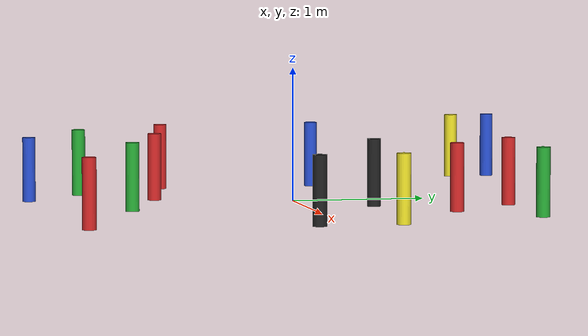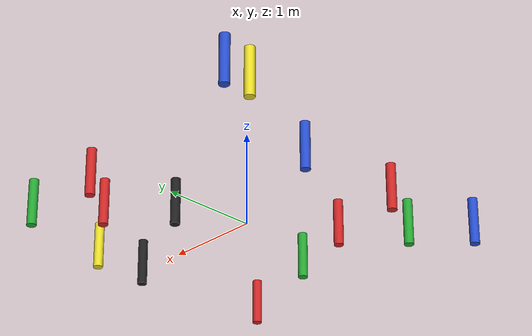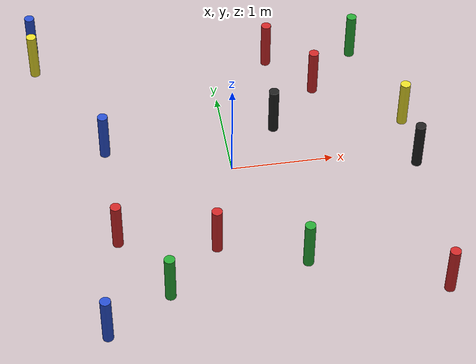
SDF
<?xml version='1.0'?>
<sdf version='1.6'>
  <model name='obstacles'>
    <pose frame=''>0 0 0 0 -0 0</pose>
    <link name='obstacle'>
      <collision name='obstacle_1'>
        <pose>-0.3 -1.0 0.25 0 0 0</pose>
        <geometry>
          <cylinder>
            <radius>0.05</radius>
            <length>0.5</length>
          </cylinder>
        </geometry>
        <max_contacts>10</max_contacts>
        <surface>
          <bounce/>
          <friction>
            <ode/>
          </friction>
          <contact>
            <ode/>
          </contact>
        </surface>
      </collision>

      <visual name='obstacle_1'>
        <pose>-0.3 -1.0 0.25 0 0 0</pose>
        <geometry>
          <cylinder>
            <radius>0.05</radius>
            <length>0.5</length>
          </cylinder>
        </geometry>
        <material>
          <script>
            <uri>file://media/materials/scripts/gazebo.material</uri>
            <name>Gazebo/Red</name>
          </script>
        </material>
      </visual>

      <collision name='obstacle_2'>
        <pose>-1.2 -0.8 0.25 0 0 0</pose>
        <geometry>
          <cylinder>
            <radius>0.05</radius>
            <length>0.5</length>
          </cylinder>
        </geometry>
        <max_contacts>10</max_contacts>
        <surface>
          <bounce/>
          <friction>
            <ode/>
          </friction>
          <contact>
            <ode/>
          </contact>
        </surface>
      </collision>

      <visual name='obstacle_2'>
        <pose>-1.2 -0.8 0.25 0 0 0</pose>
        <geometry>
          <cylinder>
            <radius>0.05</radius>
            <length>0.5</length>
          </cylinder>
        </geometry>
        <material>
          <script>
            <uri>file://media/materials/scripts/gazebo.material</uri>
            <name>Gazebo/Red</name>
          </script>
        </material>
      </visual>

      <collision name='obstacle_3'>
        <pose>-1.8 1.7 0.25 0 0 0</pose>
        <geometry>
          <cylinder>
            <radius>0.05</radius>
            <length>0.5</length>
          </cylinder>
        </geometry>
        <max_contacts>10</max_contacts>
        <surface>
          <bounce/>
          <friction>
            <ode/>
          </friction>
          <contact>
            <ode/>
          </contact>
        </surface>
      </collision>

      <visual name='obstacle_3'>
        <pose>-1.8 1.7 0.25 0 0 0</pose>
        <geometry>
          <cylinder>
            <radius>0.05</radius>
            <length>0.5</length>
          </cylinder>
        </geometry>
        <material>
          <script>
            <uri>file://media/materials/scripts/gazebo.material</uri>
            <name>Gazebo/Yellow</name>
          </script>
        </material>
      </visual>

      <collision name='obstacle_4'>
        <pose>-1.2 0.4 0.25 0 0 0</pose>
        <geometry>
          <cylinder>
            <radius>0.05</radius>
            <length>0.5</length>
          </cylinder>
        </geometry>
        <max_contacts>10</max_contacts>
        <surface>
          <bounce/>
          <friction>
            <ode/>
          </friction>
          <contact>
            <ode/>
          </contact>
        </surface>
      </collision>

      <visual name='obstacle_4'>
        <pose>-1.2 0.4 0.25 0 0 0</pose>
        <geometry>
          <cylinder>
            <radius>0.05</radius>
            <length>0.5</length>
          </cylinder>
        </geometry>
        <material>
          <script>
            <uri>file://media/materials/scripts/gazebo.material</uri>
            <name>Gazebo/Blue</name>
          </script>
        </material>
      </visual>

      <collision name='obstacle_5'>
        <pose>0.5 -1.3 0.25 0 0 0</pose>
        <geometry>
          <cylinder>
            <radius>0.05</radius>
            <length>0.5</length>
          </cylinder>
        </geometry>
        <max_contacts>10</max_contacts>
        <surface>
          <bounce/>
          <friction>
            <ode/>
          </friction>
          <contact>
            <ode/>
          </contact>
        </surface>
      </collision>

      <visual name='obstacle_5'>
        <pose>0.5 -1.3 0.25 0 0 0</pose>
        <geometry>
          <cylinder>
            <radius>0.05</radius>
            <length>0.5</length>
          </cylinder>
        </geometry>
        <material>
          <script>
            <uri>file://media/materials/scripts/gazebo.material</uri>
            <name>Gazebo/Green</name>
          </script>
        </material>
      </visual>

      <collision name='obstacle_6'>
        <pose>0.6 1.5 0.25 0 0 0</pose>
        <geometry>
          <cylinder>
            <radius>0.05</radius>
            <length>0.5</length>
          </cylinder>
        </geometry>
        <max_contacts>10</max_contacts>
        <surface>
          <bounce/>
          <friction>
            <ode/>
          </friction>
          <contact>
            <ode/>
          </contact>
        </surface>
      </collision>

      <visual name='obstacle_6'>
        <pose>0.6 1.5 0.25 0 0 0</pose>
        <geometry>
          <cylinder>
            <radius>0.05</radius>
            <length>0.5</length>
          </cylinder>
        </geometry>
        <material>
          <script>
            <uri>file://media/materials/scripts/gazebo.material</uri>
            <name>Gazebo/Red</name>
          </script>
        </material>
      </visual>

      <collision name='obstacle_7'>
        <pose>0.5 0.5 0.25 0 0 0</pose>
        <geometry>
          <cylinder>
            <radius>0.05</radius>
            <length>0.5</length>
          </cylinder>
        </geometry>
        <max_contacts>10</max_contacts>
        <surface>
          <bounce/>
          <friction>
            <ode/>
          </friction>
          <contact>
            <ode/>
          </contact>
        </surface>
      </collision>

      <visual name='obstacle_7'>
        <pose>0.5 0.5 0.25 0 0 0</pose>
        <geometry>
          <cylinder>
            <radius>0.05</radius>
            <length>0.5</length>
          </cylinder>
        </geometry>
        <material>
          <script>
            <uri>file://media/materials/scripts/gazebo.material</uri>
            <name>Gazebo/Black</name>
          </script>
        </material>
      </visual>

      <collision name='obstacle_8'>
        <pose>1.5 1.5 0.25 0 0 0</pose>
        <geometry>
          <cylinder>
            <radius>0.05</radius>
            <length>0.5</length>
          </cylinder>
        </geometry>
        <max_contacts>10</max_contacts>
        <surface>
          <bounce/>
          <friction>
            <ode/>
          </friction>
          <contact>
            <ode/>
          </contact>
        </surface>
      </collision>

      <visual name='obstacle_8'>
        <pose>1.5 1.5 0.25 0 0 0</pose>
        <geometry>
          <cylinder>
            <radius>0.05</radius>
            <length>0.5</length>
          </cylinder>
        </geometry>
        <material>
          <script>
            <uri>file://media/materials/scripts/gazebo.material</uri>
            <name>Gazebo/Green</name>
          </script>
        </material>
      </visual>

      <collision name='obstacle_9'>
        <pose>1.0 1.0 0.25 0 0 0</pose>
        <geometry>
          <cylinder>
            <radius>0.05</radius>
            <length>0.5</length>
          </cylinder>
        </geometry>
        <max_contacts>10</max_contacts>
        <surface>
          <bounce/>
          <friction>
            <ode/>
          </friction>
          <contact>
            <ode/>
          </contact>
        </surface>
      </collision>

      <visual name='obstacle_9'>
        <pose>1.0 1.0 0.25 0 0 0</pose>
        <geometry>
          <cylinder>
            <radius>0.05</radius>
            <length>0.5</length>
          </cylinder>
        </geometry>
        <material>
          <script>
            <uri>file://media/materials/scripts/gazebo.material</uri>
            <name>Gazebo/Red</name>
          </script>
        </material>
      </visual>

      <collision name='obstacle_10'>
        <pose> -0.8 -1.5 0.25 0 0 0</pose>
        <geometry>
          <cylinder>
            <radius>0.05</radius>
            <length>0.5</length>
          </cylinder>
        </geometry>
        <max_contacts>10</max_contacts>
        <surface>
          <bounce/>
          <friction>
            <ode/>
          </friction>
          <contact>
            <ode/>
          </contact>
        </surface>
      </collision>

      <visual name='obstacle_10'>
        <pose> -0.8 -1.5 0.25 0 0 0</pose>
        <geometry>
          <cylinder>
            <radius>0.05</radius>
            <length>0.5</length>
          </cylinder>
        </geometry>
        <material>
          <script>
            <uri>file://media/materials/scripts/gazebo.material</uri>
            <name>Gazebo/Green</name>
          </script>
        </material>
      </visual>

       <collision name='obstacle_11'>
        <pose> -1.8 2.0 0.25 0 0 0</pose>
        <geometry>
          <cylinder>
            <radius>0.05</radius>
            <length>0.5</length>
          </cylinder>
        </geometry>
        <max_contacts>10</max_contacts>
        <surface>
          <bounce/>
          <friction>
            <ode/>
          </friction>
          <contact>
            <ode/>
          </contact>
        </surface>
      </collision>

      <visual name='obstacle_11'>
        <pose> -1.8 2.0 0.25 0 0 0</pose>
        <geometry>
          <cylinder>
            <radius>0.05</radius>
            <length>0.5</length>
          </cylinder>
        </geometry>
        <material>
          <script>
            <uri>file://media/materials/scripts/gazebo.material</uri>
            <name>Gazebo/Blue</name>
          </script>
        </material>
      </visual>

      <collision name='obstacle_12'>
        <pose> 1.8 -0.2 0.25 0 0 0</pose>
        <geometry>
          <cylinder>
            <radius>0.05</radius>
            <length>0.5</length>
          </cylinder>
        </geometry>
        <max_contacts>10</max_contacts>
        <surface>
          <bounce/>
          <friction>
            <ode/>
          </friction>
          <contact>
            <ode/>
          </contact>
        </surface>
      </collision>

      <visual name='obstacle_12'>
        <pose> 1.8 -0.2 0.25 0 0 0</pose>
        <geometry>
          <cylinder>
            <radius>0.05</radius>
            <length>0.5</length>
          </cylinder>
        </geometry>
        <material>
          <script>
            <uri>file://media/materials/scripts/gazebo.material</uri>
            <name>Gazebo/Black</name>
          </script>
        </material>
      </visual>

      <collision name='obstacle_13'>
        <pose> 1.8 0.4 0.25 0 0 0</pose>
        <geometry>
          <cylinder>
            <radius>0.05</radius>
            <length>0.5</length>
          </cylinder>
        </geometry>
        <max_contacts>10</max_contacts>
        <surface>
          <bounce/>
          <friction>
            <ode/>
          </friction>
          <contact>
            <ode/>
          </contact>
        </surface>
      </collision>

      <visual name='obstacle_13'>
        <pose> 1.8 0.4 0.25 0 0 0</pose>
        <geometry>
          <cylinder>
            <radius>0.05</radius>
            <length>0.5</length>
          </cylinder>
        </geometry>
        <material>
          <script>
            <uri>file://media/materials/scripts/gazebo.material</uri>
            <name>Gazebo/Yellow</name>
          </script>
        </material>
      </visual>

      <collision name='obstacle_14'>
        <pose> 1.7 -1.8 0.25 0 0 0</pose>
        <geometry>
          <cylinder>
            <radius>0.05</radius>
            <length>0.5</length>
          </cylinder>
        </geometry>
        <max_contacts>10</max_contacts>
        <surface>
          <bounce/>
          <friction>
            <ode/>
          </friction>
          <contact>
            <ode/>
          </contact>
        </surface>
      </collision>

      <visual name='obstacle_14'>
        <pose> 1.7 -1.8 0.25 0 0 0</pose>
        <geometry>
          <cylinder>
            <radius>0.05</radius>
            <length>0.5</length>
          </cylinder>
        </geometry>
        <material>
          <script>
            <uri>file://media/materials/scripts/gazebo.material</uri>
            <name>Gazebo/Red</name>
          </script>
        </material>
      </visual>

      <collision name='obstacle_15'>
        <pose> -1.4 -1.8 0.15 0 0 0</pose>
        <geometry>
          <cylinder>
            <radius>0.05</radius>
            <length>0.5</length>
          </cylinder>
        </geometry>
        <max_contacts>10</max_contacts>
        <surface>
          <bounce/>
          <friction>
            <ode/>
          </friction>
          <contact>
            <ode/>
          </contact>
        </surface>
      </collision>

      <visual name='obstacle_15'>
        <pose> -1.4 -1.8 0.15 0 0 0</pose>
        <geometry>
          <cylinder>
            <radius>0.05</radius>
            <length>0.5</length>
          </cylinder>
        </geometry>
        <material>
          <script>
            <uri>file://media/materials/scripts/gazebo.material</uri>
            <name>Gazebo/Blue</name>
          </script>
        </material>
      </visual>

    </link>
    <static>1</static>

  </model>
</sdf>
